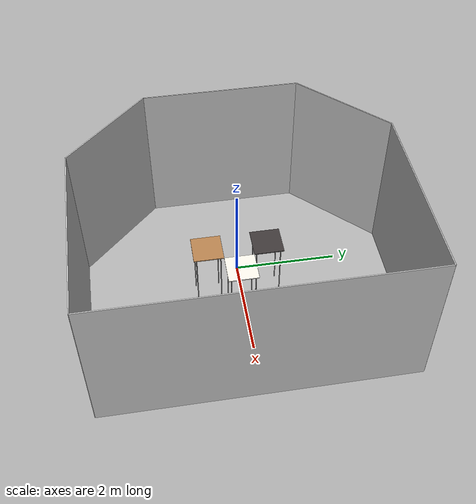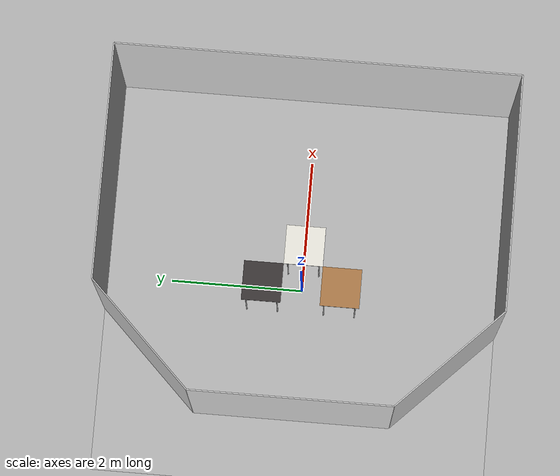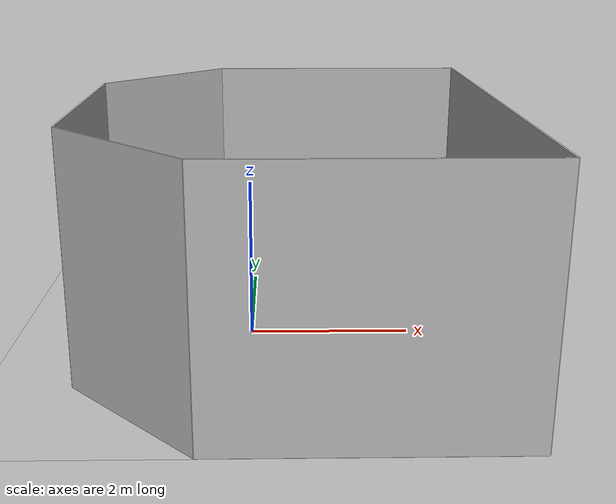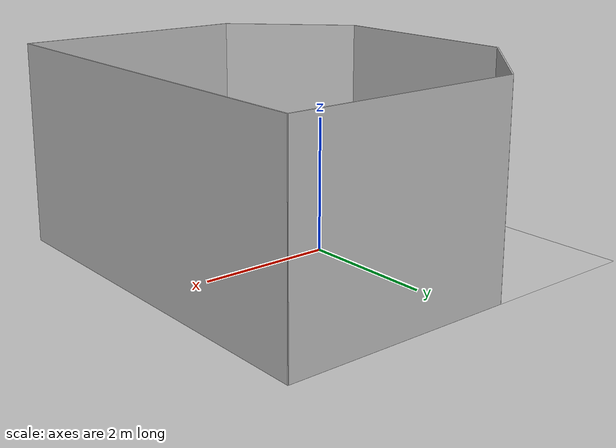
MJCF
<mujoco model="empty_arena">
    <asset>
        <texture builtin="gradient" height="256" rgb1=".9 .9 1." rgb2=".2 .3 .4" type="skybox" width="256"/>
        <texture file="textures/light-gray-floor-tile.png" type="2d" name="texplane"/>
        <material name="floorplane" reflectance="0.01" shininess="0.0" specular="0.0" texrepeat="2 2" texture="texplane"
                  texuniform="true"/>
        <!-- plaster walls -->
        <texture file="textures/light-gray-plaster.png" type="2d" name="tex-light-gray-plaster"/>
        <material name="walls_mat" reflectance="0.0" shininess="0.1" specular="0.1" texrepeat="3 3"
                  texture="tex-light-gray-plaster" texuniform="true"/>

        <!-- wood texture -->
        <texture file="textures/light-wood.png" type="2d" name="tex-light-wood"/>
        <material name="light-wood" reflectance="0.7" texrepeat="15 15" texture="tex-light-wood"
                  texuniform="true"/>

    </asset>
    <worldbody>
        <!-- Floor -->
        <geom condim="3" group="1" material="floorplane" name="floor" pos="0 0 0" size="3 3 .125" type="plane"/>
        <!-- Walls (visual only) -->
        <geom pos="-1.25 2.25 1.5" quat="0.6532815 0.6532815 0.2705981 0.2705981" size="1.06 1.5 0.01" type="box"
              conaffinity="0" contype="0" group="1" name="wall_leftcorner_visual" material="walls_mat"/>
        <geom pos="-1.25 -2.25 1.5" quat="0.6532815 0.6532815 -0.2705981 -0.2705981" size="1.06 1.5 0.01" type="box"
              conaffinity="0" contype="0" group="1" name="wall_rightcorner_visual" material="walls_mat"/>
        <geom pos="1.25 3 1.5" quat="0.7071 0.7071 0 0" size="1.75 1.5 0.01" type="box" conaffinity="0" contype="0"
              group="1" name="wall_left_visual" material="walls_mat"/>
        <geom pos="1.25 -3 1.5" quat="0.7071 -0.7071 0 0" size="1.75 1.5 0.01" type="box" conaffinity="0" contype="0"
              group="1" name="wall_right_visual" material="walls_mat"/>
        <geom pos="-2 0 1.5" quat="0.5 0.5 0.5 0.5" size="1.5 1.5 0.01" type="box" conaffinity="0" contype="0" group="1"
              name="wall_rear_visual" material="walls_mat"/>
        <geom pos="3 0 1.5" quat="0.5 0.5 -0.5 -0.5" size="3 1.5 0.01" type="box" conaffinity="0" contype="0" group="1"
              name="wall_front_visual" material="walls_mat"/>
        <light pos="1.0 1.0 1.5" dir="-0.2 -0.2 -1" specular="0.3 0.3 0.3" directional="true" castshadow="false"/>

        <!-- Tables -->
        <body name="table_wood" pos="0.0 -0.6 0">
            <geom name="table_wood_top" type="box" size=".30 .30 .01" pos="0 0 .7"
                  material="light-wood"/>
            <geom name="table_wood_leg_1" type="cylinder" size=".01 .7" pos=".24 -.24 -.0" euler="0 0 0"/>
            <geom name="table_wood_leg_2" type="cylinder" size=".01 .7" pos=".24 .24 -.0" euler="0 0 0"/>
            <geom name="table_wood_leg_3" type="cylinder" size=".01 .7" pos="-.24 -.24 -.0" euler="0 0 0"/>
            <geom name="table_wood_leg_4" type="cylinder" size=".01 .7" pos="-.24 .24 -.0" euler="0 0 0"/>
        </body>
        <body name="table_black" pos="0 0.6 0">
            <geom name="table_black_top" type="box" size=".30 .30 .01" pos="0 0 .7"
                  rgba="0.23529411764 0.21568627451 0.21568627451 1"/>
            <geom name="table_black_leg_1" type="cylinder" size=".01 .7" pos=".24 -.24 -.0" euler="0 0 0"/>
            <geom name="table_black_leg_2" type="cylinder" size=".01 .7" pos=".24 .24 -.0" euler="0 0 0"/>
            <geom name="table_black_leg_3" type="cylinder" size=".01 .7" pos="-.24 -.24 -.0" euler="0 0 0"/>
            <geom name="table_black_leg_4" type="cylinder" size=".01 .7" pos="-.24 .24 -.0" euler="0 0 0"/>
        </body>
        <body name="tale_white" pos="0.6 0 0">
            <geom name="table_white_top" type="box" size=".30 .30 .01" pos="0 0 .7" rgba="0.95 0.94 0.9 1"/>
            <geom name="table_white_leg_1" type="cylinder" size=".01 .7" pos=".24 -.24 -.0" euler="0 0 0"/>
            <geom name="table_white_leg_2" type="cylinder" size=".01 .7" pos=".24 .24 -.0" euler="0 0 0"/>
            <geom name="table_white_leg_3" type="cylinder" size=".01 .7" pos="-.24 -.24 -.0" euler="0 0 0"/>
            <geom name="table_white_leg_4" type="cylinder" size=".01 .7" pos="-.24 .24 -.0" euler="0 0 0"/>
        </body>

        <!--angle view-->
        <camera name="rightangleview" pos="2.182 1.724 2.590" xyaxes="-0.685 0.729 0.000 -0.456 -0.429 0.780"/>
        <camera name="leftangleview" pos="2.182 -1.724 2.590" xyaxes="0.685 0.729 0.000 -0.456 0.429 0.780"/>
        <!-- front view -->
        <camera mode="fixed" name="frontview" pos="2.5 0 1.45" quat="0.56 0.43 0.43 0.56"/>
        <!-- bird view -->
        <camera mode="fixed" name="birdview" pos="-0.2 0 3.0" quat="0.7071 0 0 0.7071"/>
        <!-- side view -->
        <camera mode="fixed" name="leftsideview" pos="0.151 -2.941 0.9" xyaxes="1.000 0.000 0.000 0.000 0.000 1.000"/>
        <camera mode="fixed" name="rightsideview" pos="0.151 2.941 0.9" xyaxes="-1.000 0.000 0.000 0.000 0.000 1.000"/>

    </worldbody>
</mujoco>
